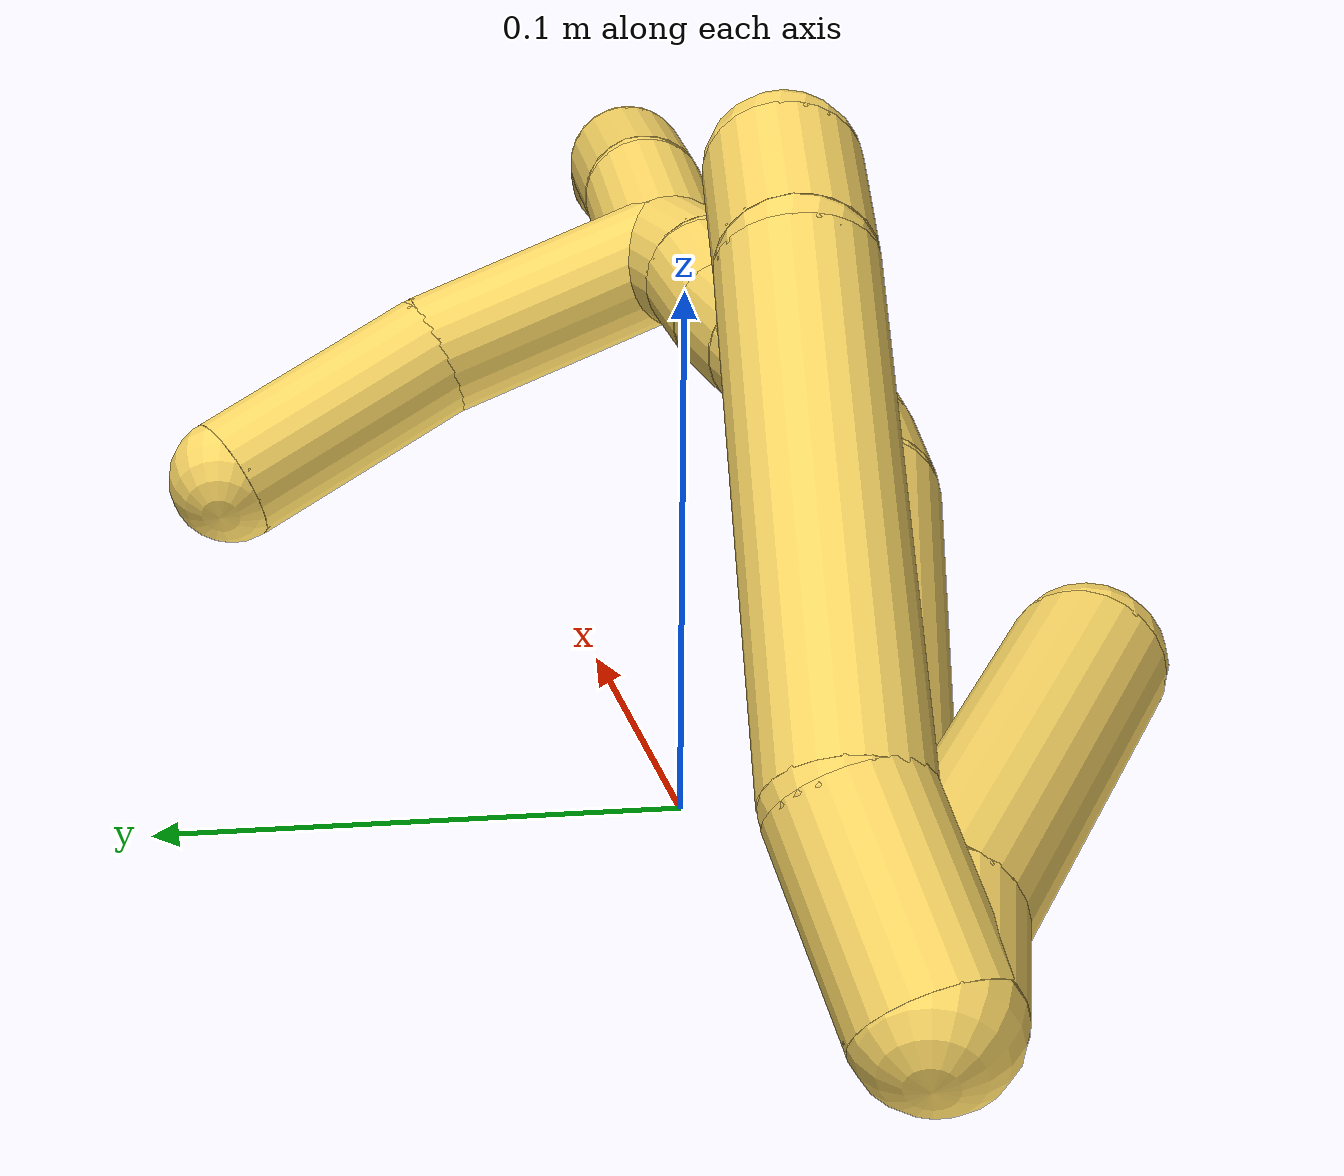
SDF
<sdf version="1.7">
 <world name="default">
  <model name="5">
   <static>0</static>
   <link name="5">
    <collision name="collision-cylinder-e_1_2_8">
     <pose>0.003711 0.008272 0.01373 -0.542253 0.227525 -0.063498</pose>
     <geometry><cylinder><radius>0.0125</radius><length>0.032907</length></cylinder></geometry>
     <surface>
      <friction><ode><mu>1.16</mu><mu2>1.16</mu2><slip1>0</slip1><slip2>0</slip2></ode></friction>
      <contact><ode><kp>1e+06</kp><kd>1</kd><max_vel>0</max_vel><min_depth>0.001</min_depth></ode></contact>
     </surface>
    </collision>
    <visual name="visual-cylinder-e_1_2_8">
     <pose>0.003711 0.008272 0.01373 -0.542253 0.227525 -0.063498</pose>
     <geometry><cylinder><radius>0.0125</radius><length>0.032907</length></cylinder></geometry>
     <material><ambient>1 0.858824 0.4 1</ambient></material>
    </visual>
    <collision name="collision-cylinder-e_2_8_9">
     <pose>0.008106 0.031715 0.070272 -0.340533 0.015042 -0.002586</pose>
     <geometry><cylinder><radius>0.0125</radius><length>0.090851</length></cylinder></geometry>
     <surface>
      <friction><ode><mu>1.16</mu><mu2>1.16</mu2><slip1>0</slip1><slip2>0</slip2></ode></friction>
      <contact><ode><kp>1e+06</kp><kd>1</kd><max_vel>0</max_vel><min_depth>0.001</min_depth></ode></contact>
     </surface>
    </collision>
    <visual name="visual-cylinder-e_2_8_9">
     <pose>0.008106 0.031715 0.070272 -0.340533 0.015042 -0.002586</pose>
     <geometry><cylinder><radius>0.0125</radius><length>0.090851</length></cylinder></geometry>
     <material><ambient>1 0.858824 0.4 1</ambient></material>
    </visual>
    <collision name="collision-cylinder-e_3_9_6">
     <pose>0.010571 0.04723 0.126079 -0.026567 0.136209 -0.001812</pose>
     <geometry><cylinder><radius>0.0125</radius><length>0.026242</length></cylinder></geometry>
     <surface>
      <friction><ode><mu>1.16</mu><mu2>1.16</mu2><slip1>0</slip1><slip2>0</slip2></ode></friction>
      <contact><ode><kp>1e+06</kp><kd>1</kd><max_vel>0</max_vel><min_depth>0.001</min_depth></ode></contact>
     </surface>
    </collision>
    <visual name="visual-cylinder-e_3_9_6">
     <pose>0.010571 0.04723 0.126079 -0.026567 0.136209 -0.001812</pose>
     <geometry><cylinder><radius>0.0125</radius><length>0.026242</length></cylinder></geometry>
     <material><ambient>1 0.858824 0.4 1</ambient></material>
    </visual>
    <collision name="collision-cylinder-e_1_2_10">
     <pose>0.000419 -0.001011 0.01089 0.09254 0.038337 0.001775</pose>
     <geometry><cylinder><radius>0.0125</radius><length>0.021889</length></cylinder></geometry>
     <surface>
      <friction><ode><mu>1.16</mu><mu2>1.16</mu2><slip1>0</slip1><slip2>0</slip2></ode></friction>
      <contact><ode><kp>1e+06</kp><kd>1</kd><max_vel>0</max_vel><min_depth>0.001</min_depth></ode></contact>
     </surface>
    </collision>
    <visual name="visual-cylinder-e_1_2_10">
     <pose>0.000419 -0.001011 0.01089 0.09254 0.038337 0.001775</pose>
     <geometry><cylinder><radius>0.0125</radius><length>0.021889</length></cylinder></geometry>
     <material><ambient>1 0.858824 0.4 1</ambient></material>
    </visual>
    <collision name="collision-cylinder-e_2_10_5">
     <pose>-0.00602 -0.013508 0.058472 0.303391 -0.176535 -0.027055</pose>
     <geometry><cylinder><radius>0.0125</radius><length>0.078111</length></cylinder></geometry>
     <surface>
      <friction><ode><mu>1.16</mu><mu2>1.16</mu2><slip1>0</slip1><slip2>0</slip2></ode></friction>
      <contact><ode><kp>1e+06</kp><kd>1</kd><max_vel>0</max_vel><min_depth>0.001</min_depth></ode></contact>
     </surface>
    </collision>
    <visual name="visual-cylinder-e_2_10_5">
     <pose>-0.00602 -0.013508 0.058472 0.303391 -0.176535 -0.027055</pose>
     <geometry><cylinder><radius>0.0125</radius><length>0.078111</length></cylinder></geometry>
     <material><ambient>1 0.858824 0.4 1</ambient></material>
    </visual>
    <collision name="collision-cylinder-e_1_2_11">
     <pose>0.007638 -0.006207 0.02673 0.228187 0.271484 0.0313</pose>
     <geometry><cylinder><radius>0.0125</radius><length>0.056968</length></cylinder></geometry>
     <surface>
      <friction><ode><mu>1.16</mu><mu2>1.16</mu2><slip1>0</slip1><slip2>0</slip2></ode></friction>
      <contact><ode><kp>1e+06</kp><kd>1</kd><max_vel>0</max_vel><min_depth>0.001</min_depth></ode></contact>
     </surface>
    </collision>
    <visual name="visual-cylinder-e_1_2_11">
     <pose>0.007638 -0.006207 0.02673 0.228187 0.271484 0.0313</pose>
     <geometry><cylinder><radius>0.0125</radius><length>0.056968</length></cylinder></geometry>
     <material><ambient>1 0.858824 0.4 1</ambient></material>
    </visual>
    <collision name="collision-cylinder-e_2_11_12">
     <pose>0.020715 -0.020157 0.103857 0.15242 0.106257 0.008121</pose>
     <geometry><cylinder><radius>0.0125</radius><length>0.102557</length></cylinder></geometry>
     <surface>
      <friction><ode><mu>1.16</mu><mu2>1.16</mu2><slip1>0</slip1><slip2>0</slip2></ode></friction>
      <contact><ode><kp>1e+06</kp><kd>1</kd><max_vel>0</max_vel><min_depth>0.001</min_depth></ode></contact>
     </surface>
    </collision>
    <visual name="visual-cylinder-e_2_11_12">
     <pose>0.020715 -0.020157 0.103857 0.15242 0.106257 0.008121</pose>
     <geometry><cylinder><radius>0.0125</radius><length>0.102557</length></cylinder></geometry>
     <material><ambient>1 0.858824 0.4 1</ambient></material>
    </visual>
    <collision name="collision-cylinder-e_3_12_13">
     <pose>0.029648 -0.031037 0.166967 0.242073 0.260794 0.031899</pose>
     <geometry><cylinder><radius>0.0125</radius><length>0.027103</length></cylinder></geometry>
     <surface>
      <friction><ode><mu>1.16</mu><mu2>1.16</mu2><slip1>0</slip1><slip2>0</slip2></ode></friction>
      <contact><ode><kp>1e+06</kp><kd>1</kd><max_vel>0</max_vel><min_depth>0.001</min_depth></ode></contact>
     </surface>
    </collision>
    <visual name="visual-cylinder-e_3_12_13">
     <pose>0.029648 -0.031037 0.166967 0.242073 0.260794 0.031899</pose>
     <geometry><cylinder><radius>0.0125</radius><length>0.027103</length></cylinder></geometry>
     <material><ambient>1 0.858824 0.4 1</ambient></material>
    </visual>
    <collision name="collision-cylinder-e_4_13_14">
     <pose>0.038363 -0.036883 0.194871 0.176354 0.326259 0.0291</pose>
     <geometry><cylinder><radius>0.0125</radius><length>0.032582</length></cylinder></geometry>
     <surface>
      <friction><ode><mu>1.16</mu><mu2>1.16</mu2><slip1>0</slip1><slip2>0</slip2></ode></friction>
      <contact><ode><kp>1e+06</kp><kd>1</kd><max_vel>0</max_vel><min_depth>0.001</min_depth></ode></contact>
     </surface>
    </collision>
    <visual name="visual-cylinder-e_4_13_14">
     <pose>0.038363 -0.036883 0.194871 0.176354 0.326259 0.0291</pose>
     <geometry><cylinder><radius>0.0125</radius><length>0.032582</length></cylinder></geometry>
     <material><ambient>1 0.858824 0.4 1</ambient></material>
    </visual>
    <collision name="collision-cylinder-e_5_14_15">
     <pose>0.048478 -0.040587 0.218848 0.112947 0.50546 0.029198</pose>
     <geometry><cylinder><radius>0.0125</radius><length>0.02021</length></cylinder></geometry>
     <surface>
      <friction><ode><mu>1.16</mu><mu2>1.16</mu2><slip1>0</slip1><slip2>0</slip2></ode></friction>
      <contact><ode><kp>1e+06</kp><kd>1</kd><max_vel>0</max_vel><min_depth>0.001</min_depth></ode></contact>
     </surface>
    </collision>
    <visual name="visual-cylinder-e_5_14_15">
     <pose>0.048478 -0.040587 0.218848 0.112947 0.50546 0.029198</pose>
     <geometry><cylinder><radius>0.0125</radius><length>0.02021</length></cylinder></geometry>
     <material><ambient>1 0.858824 0.4 1</ambient></material>
    </visual>
    <collision name="collision-cylinder-e_6_15_16">
     <pose>0.058059 -0.04278 0.236499 0.134164 0.482742 0.033074</pose>
     <geometry><cylinder><radius>0.0125</radius><length>0.020201</length></cylinder></geometry>
     <surface>
      <friction><ode><mu>1.16</mu><mu2>1.16</mu2><slip1>0</slip1><slip2>0</slip2></ode></friction>
      <contact><ode><kp>1e+06</kp><kd>1</kd><max_vel>0</max_vel><min_depth>0.001</min_depth></ode></contact>
     </surface>
    </collision>
    <visual name="visual-cylinder-e_6_15_16">
     <pose>0.058059 -0.04278 0.236499 0.134164 0.482742 0.033074</pose>
     <geometry><cylinder><radius>0.0125</radius><length>0.020201</length></cylinder></geometry>
     <material><ambient>1 0.858824 0.4 1</ambient></material>
    </visual>
    <collision name="collision-cylinder-e_7_16_17">
     <pose>0.066786 -0.044564 0.254656 0.06313 0.409249 0.013105</pose>
     <geometry><cylinder><radius>0.0125</radius><length>0.020297</length></cylinder></geometry>
     <surface>
      <friction><ode><mu>1.16</mu><mu2>1.16</mu2><slip1>0</slip1><slip2>0</slip2></ode></friction>
      <contact><ode><kp>1e+06</kp><kd>1</kd><max_vel>0</max_vel><min_depth>0.001</min_depth></ode></contact>
     </surface>
    </collision>
    <visual name="visual-cylinder-e_7_16_17">
     <pose>0.066786 -0.044564 0.254656 0.06313 0.409249 0.013105</pose>
     <geometry><cylinder><radius>0.0125</radius><length>0.020297</length></cylinder></geometry>
     <material><ambient>1 0.858824 0.4 1</ambient></material>
    </visual>
    <collision name="collision-cylinder-e_8_17_1">
     <pose>0.076198 -0.046637 0.2723 0.175983 0.564657 0.05117</pose>
     <geometry><cylinder><radius>0.0125</radius><length>0.020082</length></cylinder></geometry>
     <surface>
      <friction><ode><mu>1.16</mu><mu2>1.16</mu2><slip1>0</slip1><slip2>0</slip2></ode></friction>
      <contact><ode><kp>1e+06</kp><kd>1</kd><max_vel>0</max_vel><min_depth>0.001</min_depth></ode></contact>
     </surface>
    </collision>
    <visual name="visual-cylinder-e_8_17_1">
     <pose>0.076198 -0.046637 0.2723 0.175983 0.564657 0.05117</pose>
     <geometry><cylinder><radius>0.0125</radius><length>0.020082</length></cylinder></geometry>
     <material><ambient>1 0.858824 0.4 1</ambient></material>
    </visual>
    <collision name="collision-cylinder-e_1_1_18">
     <pose>0.104856 -0.045454 0.26964 -2.90392 1.11795 -2.76437</pose>
     <geometry><cylinder><radius>0.0125</radius><length>0.05179</length></cylinder></geometry>
     <surface>
      <friction><ode><mu>1.16</mu><mu2>1.16</mu2><slip1>0</slip1><slip2>0</slip2></ode></friction>
      <contact><ode><kp>1e+06</kp><kd>1</kd><max_vel>0</max_vel><min_depth>0.001</min_depth></ode></contact>
     </surface>
    </collision>
    <visual name="visual-cylinder-e_1_1_18">
     <pose>0.104856 -0.045454 0.26964 -2.90392 1.11795 -2.76437</pose>
     <geometry><cylinder><radius>0.0125</radius><length>0.05179</length></cylinder></geometry>
     <material><ambient>1 0.858824 0.4 1</ambient></material>
    </visual>
    <collision name="collision-cylinder-e_2_18_4">
     <pose>0.146984 -0.041042 0.243698 -3.02527 0.897412 -2.90088</pose>
     <geometry><cylinder><radius>0.0125</radius><length>0.04821</length></cylinder></geometry>
     <surface>
      <friction><ode><mu>1.16</mu><mu2>1.16</mu2><slip1>0</slip1><slip2>0</slip2></ode></friction>
      <contact><ode><kp>1e+06</kp><kd>1</kd><max_vel>0</max_vel><min_depth>0.001</min_depth></ode></contact>
     </surface>
    </collision>
    <visual name="visual-cylinder-e_2_18_4">
     <pose>0.146984 -0.041042 0.243698 -3.02527 0.897412 -2.90088</pose>
     <geometry><cylinder><radius>0.0125</radius><length>0.04821</length></cylinder></geometry>
     <material><ambient>1 0.858824 0.4 1</ambient></material>
    </visual>
    <collision name="collision-cylinder-e_1_1_19">
     <pose>0.086087 -0.049483 0.295822 0.089521 0.28823 0.013</pose>
     <geometry><cylinder><radius>0.0125</radius><length>0.031775</length></cylinder></geometry>
     <surface>
      <friction><ode><mu>1.16</mu><mu2>1.16</mu2><slip1>0</slip1><slip2>0</slip2></ode></friction>
      <contact><ode><kp>1e+06</kp><kd>1</kd><max_vel>0</max_vel><min_depth>0.001</min_depth></ode></contact>
     </surface>
    </collision>
    <visual name="visual-cylinder-e_1_1_19">
     <pose>0.086087 -0.049483 0.295822 0.089521 0.28823 0.013</pose>
     <geometry><cylinder><radius>0.0125</radius><length>0.031775</length></cylinder></geometry>
     <material><ambient>1 0.858824 0.4 1</ambient></material>
    </visual>
    <collision name="collision-cylinder-e_2_19_20">
     <pose>0.096398 -0.056377 0.327876 0.316654 0.3153 0.050752</pose>
     <geometry><cylinder><radius>0.0125</radius><length>0.037375</length></cylinder></geometry>
     <surface>
      <friction><ode><mu>1.16</mu><mu2>1.16</mu2><slip1>0</slip1><slip2>0</slip2></ode></friction>
      <contact><ode><kp>1e+06</kp><kd>1</kd><max_vel>0</max_vel><min_depth>0.001</min_depth></ode></contact>
     </surface>
    </collision>
    <visual name="visual-cylinder-e_2_19_20">
     <pose>0.096398 -0.056377 0.327876 0.316654 0.3153 0.050752</pose>
     <geometry><cylinder><radius>0.0125</radius><length>0.037375</length></cylinder></geometry>
     <material><ambient>1 0.858824 0.4 1</ambient></material>
    </visual>
    <collision name="collision-cylinder-e_3_20_3">
     <pose>0.106897 -0.07047 0.356697 0.622108 0.309903 0.100351</pose>
     <geometry><cylinder><radius>0.0125</radius><length>0.03085</length></cylinder></geometry>
     <surface>
      <friction><ode><mu>1.16</mu><mu2>1.16</mu2><slip1>0</slip1><slip2>0</slip2></ode></friction>
      <contact><ode><kp>1e+06</kp><kd>1</kd><max_vel>0</max_vel><min_depth>0.001</min_depth></ode></contact>
     </surface>
    </collision>
    <visual name="visual-cylinder-e_3_20_3">
     <pose>0.106897 -0.07047 0.356697 0.622108 0.309903 0.100351</pose>
     <geometry><cylinder><radius>0.0125</radius><length>0.03085</length></cylinder></geometry>
     <material><ambient>1 0.858824 0.4 1</ambient></material>
    </visual>
    <collision name="collision-sphere-3">
     <pose>0.111601 -0.079031 0.368635 0 -0 0</pose>
     <geometry><sphere><radius>0.0125</radius></sphere></geometry>
     <surface>
      <friction><ode><mu>1.16</mu><mu2>1.16</mu2><slip1>0</slip1><slip2>0</slip2></ode></friction>
      <contact><ode><kp>1e+06</kp><kd>1</kd><max_vel>0</max_vel><min_depth>0.001</min_depth></ode></contact>
     </surface>
    </collision>
    <visual name="visual-sphere-3">
     <pose>0.111601 -0.079031 0.368635 0 -0 0</pose>
     <geometry><sphere><radius>0.0125</radius></sphere></geometry>
     <material><ambient>1 0.858824 0.4 1</ambient></material>
    </visual>
    <collision name="collision-sphere-20">
     <pose>0.102193 -0.061909 0.344759 0 -0 0</pose>
     <geometry><sphere><radius>0.0125</radius></sphere></geometry>
     <surface>
      <friction><ode><mu>1.16</mu><mu2>1.16</mu2><slip1>0</slip1><slip2>0</slip2></ode></friction>
      <contact><ode><kp>1e+06</kp><kd>1</kd><max_vel>0</max_vel><min_depth>0.001</min_depth></ode></contact>
     </surface>
    </collision>
    <visual name="visual-sphere-20">
     <pose>0.102193 -0.061909 0.344759 0 -0 0</pose>
     <geometry><sphere><radius>0.0125</radius></sphere></geometry>
     <material><ambient>1 0.858824 0.4 1</ambient></material>
    </visual>
    <collision name="collision-sphere-19">
     <pose>0.090603 -0.050845 0.310993 0 -0 0</pose>
     <geometry><sphere><radius>0.0125</radius></sphere></geometry>
     <surface>
      <friction><ode><mu>1.16</mu><mu2>1.16</mu2><slip1>0</slip1><slip2>0</slip2></ode></friction>
      <contact><ode><kp>1e+06</kp><kd>1</kd><max_vel>0</max_vel><min_depth>0.001</min_depth></ode></contact>
     </surface>
    </collision>
    <visual name="visual-sphere-19">
     <pose>0.090603 -0.050845 0.310993 0 -0 0</pose>
     <geometry><sphere><radius>0.0125</radius></sphere></geometry>
     <material><ambient>1 0.858824 0.4 1</ambient></material>
    </visual>
    <collision name="collision-sphere-5">
     <pose>-0.012879 -0.024995 0.095164 0 -0 0</pose>
     <geometry><sphere><radius>0.0125</radius></sphere></geometry>
     <surface>
      <friction><ode><mu>1.16</mu><mu2>1.16</mu2><slip1>0</slip1><slip2>0</slip2></ode></friction>
      <contact><ode><kp>1e+06</kp><kd>1</kd><max_vel>0</max_vel><min_depth>0.001</min_depth></ode></contact>
     </surface>
    </collision>
    <visual name="visual-sphere-5">
     <pose>-0.012879 -0.024995 0.095164 0 -0 0</pose>
     <geometry><sphere><radius>0.0125</radius></sphere></geometry>
     <material><ambient>1 0.858824 0.4 1</ambient></material>
    </visual>
    <collision name="collision-sphere-10">
     <pose>0.000839 -0.002021 0.021779 0 -0 0</pose>
     <geometry><sphere><radius>0.0125</radius></sphere></geometry>
     <surface>
      <friction><ode><mu>1.16</mu><mu2>1.16</mu2><slip1>0</slip1><slip2>0</slip2></ode></friction>
      <contact><ode><kp>1e+06</kp><kd>1</kd><max_vel>0</max_vel><min_depth>0.001</min_depth></ode></contact>
     </surface>
    </collision>
    <visual name="visual-sphere-10">
     <pose>0.000839 -0.002021 0.021779 0 -0 0</pose>
     <geometry><sphere><radius>0.0125</radius></sphere></geometry>
     <material><ambient>1 0.858824 0.4 1</ambient></material>
    </visual>
    <collision name="collision-sphere-6">
     <pose>0.012353 0.047575 0.139074 0 -0 0</pose>
     <geometry><sphere><radius>0.0125</radius></sphere></geometry>
     <surface>
      <friction><ode><mu>1.16</mu><mu2>1.16</mu2><slip1>0</slip1><slip2>0</slip2></ode></friction>
      <contact><ode><kp>1e+06</kp><kd>1</kd><max_vel>0</max_vel><min_depth>0.001</min_depth></ode></contact>
     </surface>
    </collision>
    <visual name="visual-sphere-6">
     <pose>0.012353 0.047575 0.139074 0 -0 0</pose>
     <geometry><sphere><radius>0.0125</radius></sphere></geometry>
     <material><ambient>1 0.858824 0.4 1</ambient></material>
    </visual>
    <collision name="collision-sphere-9">
     <pose>0.008789 0.046885 0.113085 0 -0 0</pose>
     <geometry><sphere><radius>0.0125</radius></sphere></geometry>
     <surface>
      <friction><ode><mu>1.16</mu><mu2>1.16</mu2><slip1>0</slip1><slip2>0</slip2></ode></friction>
      <contact><ode><kp>1e+06</kp><kd>1</kd><max_vel>0</max_vel><min_depth>0.001</min_depth></ode></contact>
     </surface>
    </collision>
    <visual name="visual-sphere-9">
     <pose>0.008789 0.046885 0.113085 0 -0 0</pose>
     <geometry><sphere><radius>0.0125</radius></sphere></geometry>
     <material><ambient>1 0.858824 0.4 1</ambient></material>
    </visual>
    <collision name="collision-sphere-2">
     <geometry><sphere><radius>0.0125</radius></sphere></geometry>
     <surface>
      <friction><ode><mu>1.16</mu><mu2>1.16</mu2><slip1>0</slip1><slip2>0</slip2></ode></friction>
      <contact><ode><kp>1e+06</kp><kd>1</kd><max_vel>0</max_vel><min_depth>0.001</min_depth></ode></contact>
     </surface>
    </collision>
    <visual name="visual-sphere-2">
     <geometry><sphere><radius>0.0125</radius></sphere></geometry>
     <material><ambient>1 0.858824 0.4 1</ambient></material>
    </visual>
    <collision name="collision-sphere-8">
     <pose>0.007423 0.016545 0.02746 0 -0 0</pose>
     <geometry><sphere><radius>0.0125</radius></sphere></geometry>
     <surface>
      <friction><ode><mu>1.16</mu><mu2>1.16</mu2><slip1>0</slip1><slip2>0</slip2></ode></friction>
      <contact><ode><kp>1e+06</kp><kd>1</kd><max_vel>0</max_vel><min_depth>0.001</min_depth></ode></contact>
     </surface>
    </collision>
    <visual name="visual-sphere-8">
     <pose>0.007423 0.016545 0.02746 0 -0 0</pose>
     <geometry><sphere><radius>0.0125</radius></sphere></geometry>
     <material><ambient>1 0.858824 0.4 1</ambient></material>
    </visual>
    <collision name="collision-sphere-11">
     <pose>0.015277 -0.012415 0.053459 0 -0 0</pose>
     <geometry><sphere><radius>0.0125</radius></sphere></geometry>
     <surface>
      <friction><ode><mu>1.16</mu><mu2>1.16</mu2><slip1>0</slip1><slip2>0</slip2></ode></friction>
      <contact><ode><kp>1e+06</kp><kd>1</kd><max_vel>0</max_vel><min_depth>0.001</min_depth></ode></contact>
     </surface>
    </collision>
    <visual name="visual-sphere-11">
     <pose>0.015277 -0.012415 0.053459 0 -0 0</pose>
     <geometry><sphere><radius>0.0125</radius></sphere></geometry>
     <material><ambient>1 0.858824 0.4 1</ambient></material>
    </visual>
    <collision name="collision-sphere-12">
     <pose>0.026154 -0.027898 0.154255 0 -0 0</pose>
     <geometry><sphere><radius>0.0125</radius></sphere></geometry>
     <surface>
      <friction><ode><mu>1.16</mu><mu2>1.16</mu2><slip1>0</slip1><slip2>0</slip2></ode></friction>
      <contact><ode><kp>1e+06</kp><kd>1</kd><max_vel>0</max_vel><min_depth>0.001</min_depth></ode></contact>
     </surface>
    </collision>
    <visual name="visual-sphere-12">
     <pose>0.026154 -0.027898 0.154255 0 -0 0</pose>
     <geometry><sphere><radius>0.0125</radius></sphere></geometry>
     <material><ambient>1 0.858824 0.4 1</ambient></material>
    </visual>
    <collision name="collision-sphere-13">
     <pose>0.033142 -0.034176 0.179679 0 -0 0</pose>
     <geometry><sphere><radius>0.0125</radius></sphere></geometry>
     <surface>
      <friction><ode><mu>1.16</mu><mu2>1.16</mu2><slip1>0</slip1><slip2>0</slip2></ode></friction>
      <contact><ode><kp>1e+06</kp><kd>1</kd><max_vel>0</max_vel><min_depth>0.001</min_depth></ode></contact>
     </surface>
    </collision>
    <visual name="visual-sphere-13">
     <pose>0.033142 -0.034176 0.179679 0 -0 0</pose>
     <geometry><sphere><radius>0.0125</radius></sphere></geometry>
     <material><ambient>1 0.858824 0.4 1</ambient></material>
    </visual>
    <collision name="collision-sphere-14">
     <pose>0.043585 -0.03959 0.210063 0 -0 0</pose>
     <geometry><sphere><radius>0.0125</radius></sphere></geometry>
     <surface>
      <friction><ode><mu>1.16</mu><mu2>1.16</mu2><slip1>0</slip1><slip2>0</slip2></ode></friction>
      <contact><ode><kp>1e+06</kp><kd>1</kd><max_vel>0</max_vel><min_depth>0.001</min_depth></ode></contact>
     </surface>
    </collision>
    <visual name="visual-sphere-14">
     <pose>0.043585 -0.03959 0.210063 0 -0 0</pose>
     <geometry><sphere><radius>0.0125</radius></sphere></geometry>
     <material><ambient>1 0.858824 0.4 1</ambient></material>
    </visual>
    <collision name="collision-sphere-15">
     <pose>0.05337 -0.041583 0.227633 0 -0 0</pose>
     <geometry><sphere><radius>0.0125</radius></sphere></geometry>
     <surface>
      <friction><ode><mu>1.16</mu><mu2>1.16</mu2><slip1>0</slip1><slip2>0</slip2></ode></friction>
      <contact><ode><kp>1e+06</kp><kd>1</kd><max_vel>0</max_vel><min_depth>0.001</min_depth></ode></contact>
     </surface>
    </collision>
    <visual name="visual-sphere-15">
     <pose>0.05337 -0.041583 0.227633 0 -0 0</pose>
     <geometry><sphere><radius>0.0125</radius></sphere></geometry>
     <material><ambient>1 0.858824 0.4 1</ambient></material>
    </visual>
    <collision name="collision-sphere-16">
     <pose>0.062748 -0.043977 0.245365 0 -0 0</pose>
     <geometry><sphere><radius>0.0125</radius></sphere></geometry>
     <surface>
      <friction><ode><mu>1.16</mu><mu2>1.16</mu2><slip1>0</slip1><slip2>0</slip2></ode></friction>
      <contact><ode><kp>1e+06</kp><kd>1</kd><max_vel>0</max_vel><min_depth>0.001</min_depth></ode></contact>
     </surface>
    </collision>
    <visual name="visual-sphere-16">
     <pose>0.062748 -0.043977 0.245365 0 -0 0</pose>
     <geometry><sphere><radius>0.0125</radius></sphere></geometry>
     <material><ambient>1 0.858824 0.4 1</ambient></material>
    </visual>
    <collision name="collision-sphere-17">
     <pose>0.070824 -0.045151 0.263948 0 -0 0</pose>
     <geometry><sphere><radius>0.0125</radius></sphere></geometry>
     <surface>
      <friction><ode><mu>1.16</mu><mu2>1.16</mu2><slip1>0</slip1><slip2>0</slip2></ode></friction>
      <contact><ode><kp>1e+06</kp><kd>1</kd><max_vel>0</max_vel><min_depth>0.001</min_depth></ode></contact>
     </surface>
    </collision>
    <visual name="visual-sphere-17">
     <pose>0.070824 -0.045151 0.263948 0 -0 0</pose>
     <geometry><sphere><radius>0.0125</radius></sphere></geometry>
     <material><ambient>1 0.858824 0.4 1</ambient></material>
    </visual>
    <collision name="collision-sphere-1">
     <pose>0.081571 -0.048122 0.280651 0 -0 0</pose>
     <geometry><sphere><radius>0.0125</radius></sphere></geometry>
     <surface>
      <friction><ode><mu>1.16</mu><mu2>1.16</mu2><slip1>0</slip1><slip2>0</slip2></ode></friction>
      <contact><ode><kp>1e+06</kp><kd>1</kd><max_vel>0</max_vel><min_depth>0.001</min_depth></ode></contact>
     </surface>
    </collision>
    <visual name="visual-sphere-1">
     <pose>0.081571 -0.048122 0.280651 0 -0 0</pose>
     <geometry><sphere><radius>0.0125</radius></sphere></geometry>
     <material><ambient>1 0.858824 0.4 1</ambient></material>
    </visual>
    <collision name="collision-sphere-18">
     <pose>0.128141 -0.042787 0.258629 0 -0 0</pose>
     <geometry><sphere><radius>0.0125</radius></sphere></geometry>
     <surface>
      <friction><ode><mu>1.16</mu><mu2>1.16</mu2><slip1>0</slip1><slip2>0</slip2></ode></friction>
      <contact><ode><kp>1e+06</kp><kd>1</kd><max_vel>0</max_vel><min_depth>0.001</min_depth></ode></contact>
     </surface>
    </collision>
    <visual name="visual-sphere-18">
     <pose>0.128141 -0.042787 0.258629 0 -0 0</pose>
     <geometry><sphere><radius>0.0125</radius></sphere></geometry>
     <material><ambient>1 0.858824 0.4 1</ambient></material>
    </visual>
    <collision name="collision-sphere-4">
     <pose>0.165827 -0.039297 0.228766 0 -0 0</pose>
     <geometry><sphere><radius>0.0125</radius></sphere></geometry>
     <surface>
      <friction><ode><mu>1.16</mu><mu2>1.16</mu2><slip1>0</slip1><slip2>0</slip2></ode></friction>
      <contact><ode><kp>1e+06</kp><kd>1</kd><max_vel>0</max_vel><min_depth>0.001</min_depth></ode></contact>
     </surface>
    </collision>
    <visual name="visual-sphere-4">
     <pose>0.165827 -0.039297 0.228766 0 -0 0</pose>
     <geometry><sphere><radius>0.0125</radius></sphere></geometry>
     <material><ambient>1 0.858824 0.4 1</ambient></material>
    </visual>
    <inertial>
     <pose>0.043305 -0.019813 0.154944 0 -0 0</pose>
     <mass>0.75</mass>
     <inertia>
      <ixx>0.000251</ixx>
      <ixy>0</ixy>
      <ixz>0</ixz>
      <iyy>0.000264</iyy>
      <iyz>0</iyz>
      <izz>1.4e-05</izz>
     </inertia>
    </inertial>
   </link>
   <pose>-0.222207 0.007458 0.047077 1.13373 0.311838 1.16143</pose>
  </model>
 </world>
</sdf>
